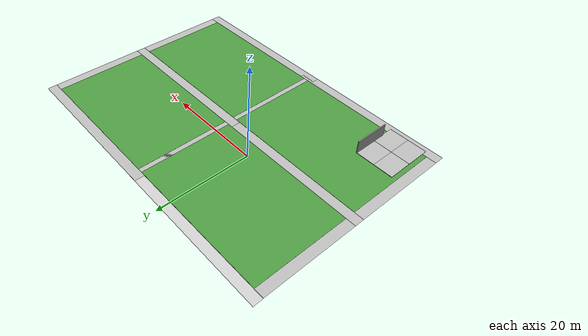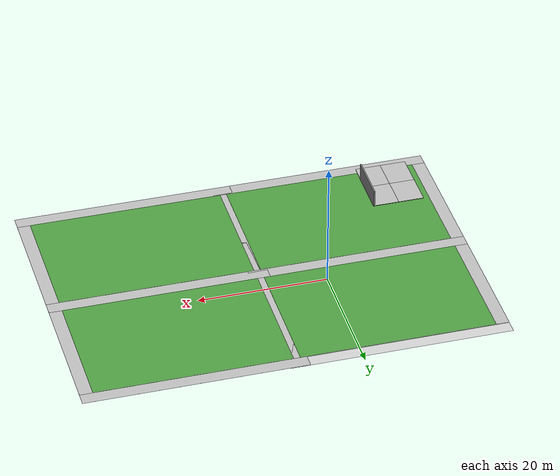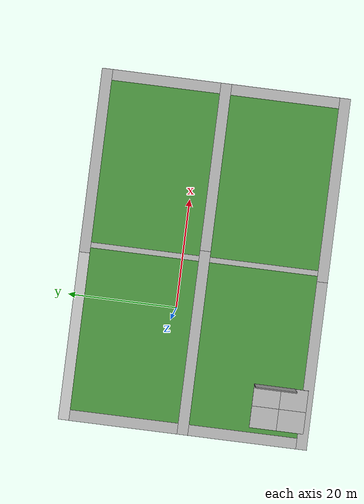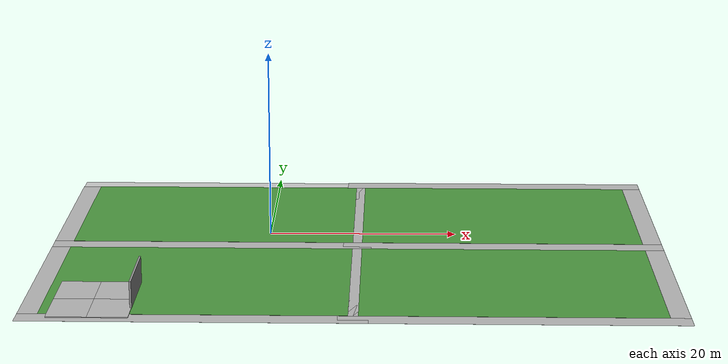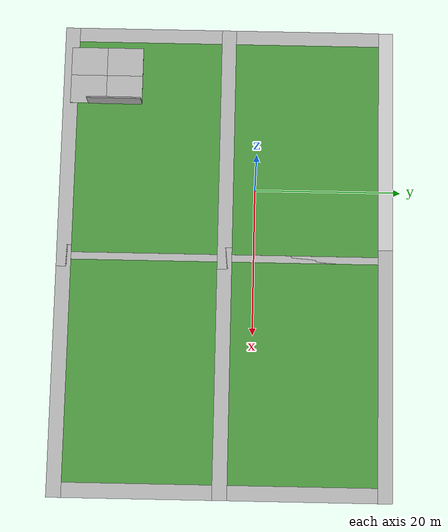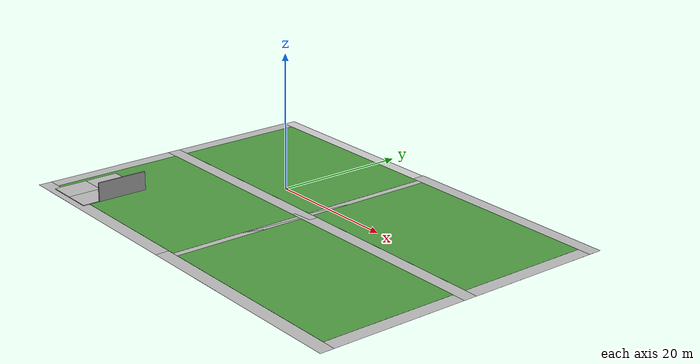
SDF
<sdf version="1.4">
 <world name="default">
  <plugin name="gazebo_octomap" filename="librotors_gazebo_octomap_plugin.so"/>
  <light name="sun" type="directional">
   <pose>0 0 10 0 -0 0</pose>
   <diffuse>0.8 0.8 0.8 1</diffuse>
   <specular>0.2 0.2 0.2 1</specular>
   <attenuation>
    <range>1000</range>
    <constant>0.9</constant>
    <linear>0.01</linear>
    <quadratic>0.001</quadratic>
   </attenuation>
   <direction>-0.5 0.1 -0.9</direction>
  </light>
  <physics type="ode">
   <ode>
    <solver><type>quick</type><iters>1000</iters><sor>1.3</sor></solver>
    <constraints>
     <cfm>0</cfm>
     <erp>0.2</erp>
     <contact_max_correcting_vel>100</contact_max_correcting_vel>
     <contact_surface_layer>0.001</contact_surface_layer>
    </constraints>
   </ode>
   <max_step_size>0.01</max_step_size>
   <real_time_factor>1</real_time_factor>
   <real_time_update_rate>100</real_time_update_rate>
   <gravity>0 0 -9.8</gravity>
  </physics>
  <scene><ambient>0.4 0.4 0.4 1</ambient><background>0.7 0.7 0.7 1</background><shadows>1</shadows></scene>
  <spherical_coordinates>
   <surface_model>EARTH_WGS84</surface_model>
   <latitude_deg>0</latitude_deg>
   <longitude_deg>0</longitude_deg>
   <elevation>0</elevation>
   <heading_deg>0</heading_deg>
  </spherical_coordinates>
  <model name="mud_box">
   <static>1</static>
   <link name="link">
    <collision name="collision"><geometry><box><size>8 10 0.2</size></box></geometry></collision>
    <visual name="visual_1">
     <pose>-2 2.5 0 0 -0 0</pose>
     <cast_shadows>0</cast_shadows>
     <geometry><box><size>4 5 0.2</size></box></geometry>
     <material>
      <script>
       <uri>model://mud_box/materials/scripts</uri>
       <uri>model://mud_box/materials/textures</uri>
       <name>vrc/mud</name>
      </script>
     </material>
    </visual>
    <visual name="visual_2">
     <pose>2 2.5 0 0 -0 0</pose>
     <cast_shadows>0</cast_shadows>
     <geometry><box><size>4 5 0.2</size></box></geometry>
     <material>
      <script>
       <uri>model://mud_box/materials/scripts</uri>
       <uri>model://mud_box/materials/textures</uri>
       <name>vrc/mud</name>
      </script>
     </material>
    </visual>
    <visual name="visual_3">
     <pose>2 -2.5 0 0 -0 0</pose>
     <cast_shadows>0</cast_shadows>
     <geometry><box><size>4 5 0.2</size></box></geometry>
     <material>
      <script>
       <uri>model://mud_box/materials/scripts</uri>
       <uri>model://mud_box/materials/textures</uri>
       <name>vrc/mud</name>
      </script>
     </material>
    </visual>
    <visual name="visual_4">
     <pose>-2 -2.5 0 0 -0 0</pose>
     <cast_shadows>0</cast_shadows>
     <geometry><box><size>4 5 0.2</size></box></geometry>
     <material>
      <script>
       <uri>model://mud_box/materials/scripts</uri>
       <uri>model://mud_box/materials/textures</uri>
       <name>vrc/mud</name>
      </script>
     </material>
    </visual>
    <velocity_decay><linear>0</linear><angular>0</angular></velocity_decay>
   </link>
   <pose>-16.1 -21 0 0 -0 0</pose>
  </model>
  <model name="grey_wall_0">
   <static>1</static>
   <link name="link">
    <pose>0 0 1.4 0 -0 0</pose>
    <collision name="collision"><geometry><box><size>7.5 0.2 2.8</size></box></geometry></collision>
    <visual name="visual">
     <cast_shadows>0</cast_shadows>
     <geometry><box><size>7.5 0.2 2.8</size></box></geometry>
     <material>
      <script>
       <uri>model://grey_wall/materials/scripts</uri>
       <uri>model://grey_wall/materials/textures</uri>
       <name>vrc/grey_wall</name>
      </script>
     </material>
    </visual>
    <velocity_decay><linear>0</linear><angular>0</angular></velocity_decay>
   </link>
   <pose>-12.15 -19.7 0 0 0 -1.57378</pose>
  </model>
  <model name="RoboCup 3D Simulation Field_3">
   <static>1</static>
   <link name="field">
    <pose>0 0 0.01 0 -0 0</pose>
    <collision name="collision">
     <geometry><plane><normal>0 0 1</normal><size>30 20</size></plane></geometry>
     <surface><friction><ode><mu>100</mu><mu2>50</mu2></ode></friction></surface>
    </collision>
    <visual name="base1">
     <pose>0 11 0.001 0 -0 0</pose>
     <cast_shadows>0</cast_shadows>
     <geometry><plane><normal>0 0 1</normal><size>34 2</size></plane></geometry>
     <material>
      <script>
       <uri>model://robocup_3Dsim_field/materials/scripts/</uri>
       <uri>model://robocup_3Dsim_field/materials/textures/</uri>
       <name>RoboCup/FieldBorder</name>
      </script>
     </material>
    </visual>
    <visual name="base2">
     <pose>0 -11 0.001 0 -0 0</pose>
     <cast_shadows>0</cast_shadows>
     <geometry><plane><normal>0 0 1</normal><size>34 2</size></plane></geometry>
     <material>
      <script>
       <uri>model://robocup_3Dsim_field/materials/scripts/</uri>
       <uri>model://robocup_3Dsim_field/materials/textures/</uri>
       <name>RoboCup/FieldBorder</name>
      </script>
     </material>
    </visual>
    <visual name="base3">
     <pose>16 0 0.001 0 -0 0</pose>
     <cast_shadows>0</cast_shadows>
     <geometry><plane><normal>0 0 1</normal><size>2 20</size></plane></geometry>
     <material>
      <script>
       <uri>model://robocup_3Dsim_field/materials/scripts/</uri>
       <uri>model://robocup_3Dsim_field/materials/textures/</uri>
       <name>RoboCup/FieldBorder</name>
      </script>
     </material>
    </visual>
    <visual name="base4">
     <pose>-16 0 0.001 0 -0 0</pose>
     <cast_shadows>0</cast_shadows>
     <geometry><plane><normal>0 0 1</normal><size>2 20</size></plane></geometry>
     <material>
      <script>
       <uri>model://robocup_3Dsim_field/materials/scripts/</uri>
       <uri>model://robocup_3Dsim_field/materials/textures/</uri>
       <name>RoboCup/FieldBorder</name>
      </script>
     </material>
    </visual>
    <visual name="carpet">
     <cast_shadows>0</cast_shadows>
     <geometry><plane><normal>0 0 1</normal><size>30 20</size></plane></geometry>
     <material>
      <script>
       <uri>model://robocup_3Dsim_field/materials/scripts/</uri>
       <uri>model://robocup_3Dsim_field/materials/textures/</uri>
       <name>RoboCup/Grass</name>
      </script>
     </material>
    </visual>
    <velocity_decay><linear>0</linear><angular>0</angular></velocity_decay>
   </link>
   <pose>-6 7 0 0 -0 0</pose>
  </model>
  <model name="RoboCup 3D Simulation Field_4">
   <static>1</static>
   <link name="field">
    <pose>0 0 0.01 0 -0 0</pose>
    <collision name="collision">
     <geometry><plane><normal>0 0 1</normal><size>30 20</size></plane></geometry>
     <surface><friction><ode><mu>100</mu><mu2>50</mu2></ode></friction></surface>
    </collision>
    <visual name="base1">
     <pose>0 11 0.001 0 -0 0</pose>
     <cast_shadows>0</cast_shadows>
     <geometry><plane><normal>0 0 1</normal><size>34 2</size></plane></geometry>
     <material>
      <script>
       <uri>model://robocup_3Dsim_field/materials/scripts/</uri>
       <uri>model://robocup_3Dsim_field/materials/textures/</uri>
       <name>RoboCup/FieldBorder</name>
      </script>
     </material>
    </visual>
    <visual name="base2">
     <pose>0 -11 0.001 0 -0 0</pose>
     <cast_shadows>0</cast_shadows>
     <geometry><plane><normal>0 0 1</normal><size>34 2</size></plane></geometry>
     <material>
      <script>
       <uri>model://robocup_3Dsim_field/materials/scripts/</uri>
       <uri>model://robocup_3Dsim_field/materials/textures/</uri>
       <name>RoboCup/FieldBorder</name>
      </script>
     </material>
    </visual>
    <visual name="base3">
     <pose>16 0 0.001 0 -0 0</pose>
     <cast_shadows>0</cast_shadows>
     <geometry><plane><normal>0 0 1</normal><size>2 20</size></plane></geometry>
     <material>
      <script>
       <uri>model://robocup_3Dsim_field/materials/scripts/</uri>
       <uri>model://robocup_3Dsim_field/materials/textures/</uri>
       <name>RoboCup/FieldBorder</name>
      </script>
     </material>
    </visual>
    <visual name="base4">
     <pose>-16 0 0.001 0 -0 0</pose>
     <cast_shadows>0</cast_shadows>
     <geometry><plane><normal>0 0 1</normal><size>2 20</size></plane></geometry>
     <material>
      <script>
       <uri>model://robocup_3Dsim_field/materials/scripts/</uri>
       <uri>model://robocup_3Dsim_field/materials/textures/</uri>
       <name>RoboCup/FieldBorder</name>
      </script>
     </material>
    </visual>
    <visual name="carpet">
     <cast_shadows>0</cast_shadows>
     <geometry><plane><normal>0 0 1</normal><size>30 20</size></plane></geometry>
     <material>
      <script>
       <uri>model://robocup_3Dsim_field/materials/scripts/</uri>
       <uri>model://robocup_3Dsim_field/materials/textures/</uri>
       <name>RoboCup/Grass</name>
      </script>
     </material>
    </visual>
    <velocity_decay><linear>0</linear><angular>0</angular></velocity_decay>
   </link>
   <pose>25 7 0 0 -0 0</pose>
  </model>
  <model name="RoboCup 3D Simulation Field_5">
   <static>1</static>
   <link name="field">
    <pose>0 0 0.01 0 -0 0</pose>
    <collision name="collision">
     <geometry><plane><normal>0 0 1</normal><size>30 20</size></plane></geometry>
     <surface><friction><ode><mu>100</mu><mu2>50</mu2></ode></friction></surface>
    </collision>
    <visual name="base1">
     <pose>0 11 0.001 0 -0 0</pose>
     <cast_shadows>0</cast_shadows>
     <geometry><plane><normal>0 0 1</normal><size>34 2</size></plane></geometry>
     <material>
      <script>
       <uri>model://robocup_3Dsim_field/materials/scripts/</uri>
       <uri>model://robocup_3Dsim_field/materials/textures/</uri>
       <name>RoboCup/FieldBorder</name>
      </script>
     </material>
    </visual>
    <visual name="base2">
     <pose>0 -11 0.001 0 -0 0</pose>
     <cast_shadows>0</cast_shadows>
     <geometry><plane><normal>0 0 1</normal><size>34 2</size></plane></geometry>
     <material>
      <script>
       <uri>model://robocup_3Dsim_field/materials/scripts/</uri>
       <uri>model://robocup_3Dsim_field/materials/textures/</uri>
       <name>RoboCup/FieldBorder</name>
      </script>
     </material>
    </visual>
    <visual name="base3">
     <pose>16 0 0.001 0 -0 0</pose>
     <cast_shadows>0</cast_shadows>
     <geometry><plane><normal>0 0 1</normal><size>2 20</size></plane></geometry>
     <material>
      <script>
       <uri>model://robocup_3Dsim_field/materials/scripts/</uri>
       <uri>model://robocup_3Dsim_field/materials/textures/</uri>
       <name>RoboCup/FieldBorder</name>
      </script>
     </material>
    </visual>
    <visual name="base4">
     <pose>-16 0 0.001 0 -0 0</pose>
     <cast_shadows>0</cast_shadows>
     <geometry><plane><normal>0 0 1</normal><size>2 20</size></plane></geometry>
     <material>
      <script>
       <uri>model://robocup_3Dsim_field/materials/scripts/</uri>
       <uri>model://robocup_3Dsim_field/materials/textures/</uri>
       <name>RoboCup/FieldBorder</name>
      </script>
     </material>
    </visual>
    <visual name="carpet">
     <cast_shadows>0</cast_shadows>
     <geometry><plane><normal>0 0 1</normal><size>30 20</size></plane></geometry>
     <material>
      <script>
       <uri>model://robocup_3Dsim_field/materials/scripts/</uri>
       <uri>model://robocup_3Dsim_field/materials/textures/</uri>
       <name>RoboCup/Grass</name>
      </script>
     </material>
    </visual>
    <velocity_decay><linear>0</linear><angular>0</angular></velocity_decay>
   </link>
   <pose>25 -15 0 0 -0 0</pose>
  </model>
  <model name="RoboCup 3D Simulation Field_6">
   <static>1</static>
   <link name="field">
    <pose>0 0 0.01 0 -0 0</pose>
    <collision name="collision">
     <geometry><plane><normal>0 0 1</normal><size>30 20</size></plane></geometry>
     <surface><friction><ode><mu>100</mu><mu2>50</mu2></ode></friction></surface>
    </collision>
    <visual name="base1">
     <pose>0 11 0.001 0 -0 0</pose>
     <cast_shadows>0</cast_shadows>
     <geometry><plane><normal>0 0 1</normal><size>34 2</size></plane></geometry>
     <material>
      <script>
       <uri>model://robocup_3Dsim_field/materials/scripts/</uri>
       <uri>model://robocup_3Dsim_field/materials/textures/</uri>
       <name>RoboCup/FieldBorder</name>
      </script>
     </material>
    </visual>
    <visual name="base2">
     <pose>0 -11 0.001 0 -0 0</pose>
     <cast_shadows>0</cast_shadows>
     <geometry><plane><normal>0 0 1</normal><size>34 2</size></plane></geometry>
     <material>
      <script>
       <uri>model://robocup_3Dsim_field/materials/scripts/</uri>
       <uri>model://robocup_3Dsim_field/materials/textures/</uri>
       <name>RoboCup/FieldBorder</name>
      </script>
     </material>
    </visual>
    <visual name="base3">
     <pose>16 0 0.001 0 -0 0</pose>
     <cast_shadows>0</cast_shadows>
     <geometry><plane><normal>0 0 1</normal><size>2 20</size></plane></geometry>
     <material>
      <script>
       <uri>model://robocup_3Dsim_field/materials/scripts/</uri>
       <uri>model://robocup_3Dsim_field/materials/textures/</uri>
       <name>RoboCup/FieldBorder</name>
      </script>
     </material>
    </visual>
    <visual name="base4">
     <pose>-16 0 0.001 0 -0 0</pose>
     <cast_shadows>0</cast_shadows>
     <geometry><plane><normal>0 0 1</normal><size>2 20</size></plane></geometry>
     <material>
      <script>
       <uri>model://robocup_3Dsim_field/materials/scripts/</uri>
       <uri>model://robocup_3Dsim_field/materials/textures/</uri>
       <name>RoboCup/FieldBorder</name>
      </script>
     </material>
    </visual>
    <visual name="carpet">
     <cast_shadows>0</cast_shadows>
     <geometry><plane><normal>0 0 1</normal><size>30 20</size></plane></geometry>
     <material>
      <script>
       <uri>model://robocup_3Dsim_field/materials/scripts/</uri>
       <uri>model://robocup_3Dsim_field/materials/textures/</uri>
       <name>RoboCup/Grass</name>
      </script>
     </material>
    </visual>
    <velocity_decay><linear>0</linear><angular>0</angular></velocity_decay>
   </link>
   <pose>-6 -15 0 0 -0 0</pose>
  </model>
  <model name="BuildingDefaultName">
   <static>1</static>
   <link name="__default__"><velocity_decay><linear>0</linear><angular>0</angular></velocity_decay></link>
  </model>
 </world>
</sdf>
